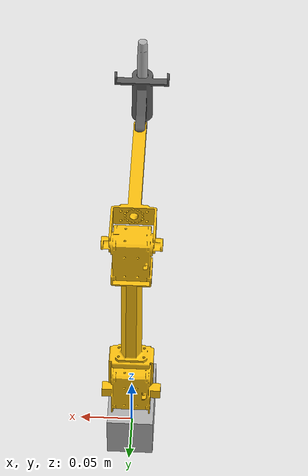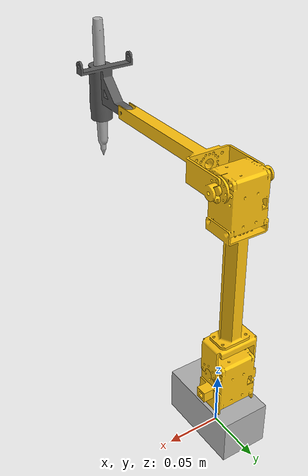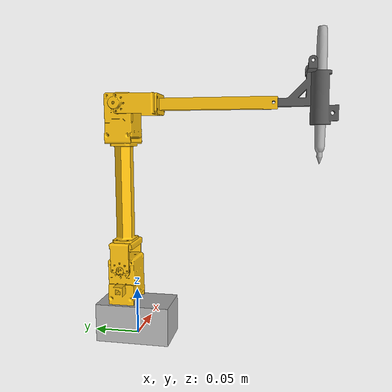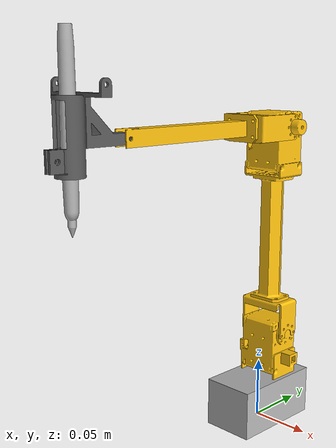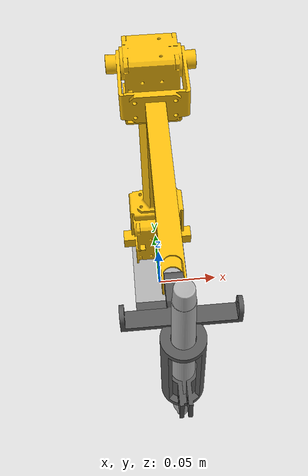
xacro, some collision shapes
<?xml version="1.0" ?>
<robot name="pr_robot" xmlns:xacro="http://www.ros.org/wiki/xacro">

<xacro:arg name="use_sim" default="true"/>

<xacro:include filename="$(find pr_description)/urdf/materials.xacro" />
<xacro:include filename="$(find pr_description)/urdf/pr_robot.gazebo" />

<link name="world"/>

<joint name="world_joint" type="fixed">
  <parent link="world"/>
  <child link="base_link"/>
</joint>

<link name="base_link">
  <inertial>
    <origin xyz="-4.853296224115538e-06 0.00024714628831860636 0.013633958120257385" rpy="0 0 0"/>
    <mass value="0.43776064834744016"/>
    <inertia ixx="0.000186" iyy="0.000102" izz="0.000172" ixy="0.0" iyz="-1e-06" ixz="0.0"/>
  </inertial>
  <visual>
    <origin xyz="0 0 0" rpy="0 0 0"/>
    <geometry>
      <mesh filename="package://pr_description/meshes/base_link.stl" scale="0.001 0.001 0.001"/>
    </geometry>
    <material name="pr_robot_silver"/>
  </visual>
  <collision>
    <origin xyz="0.0 0.0 0.0175" rpy="0 0 0"/>
    <geometry>
      <box size="0.044 0.080 0.041"/>
    </geometry>
  </collision>
</link>

<link name="yaw_link">
  <inertial>
    <origin xyz="-0.00047546439065966633 5.614646444242893e-06 0.02718028816828332" rpy="0 0 0"/>
    <mass value="0.05109923340267478"/>
    <inertia ixx="1.3e-05" iyy="1.6e-05" izz="9e-06" ixy="0.0" iyz="-0.0" ixz="0.0"/>
  </inertial>
  <visual>
    <origin xyz="0 0 0" rpy="0 0 0"/>
    <geometry>
      <mesh filename="package://pr_description/meshes/yaw_link.stl" scale="0.001 0.001 0.001"/>
    </geometry>
    <material name="pr_robot_color0"/>
  </visual>
  <collision>
    <origin xyz="0.0 0.0 0.026" rpy="0 0 0"/>
    <geometry>
      <box size="0.056 0.029 0.052"/>
    </geometry>
  </collision>
</link>

<link name="bicep_link">
  <inertial>
    <origin xyz="0.01863772819177127 0.012137367453564661 0.17072163533558457" rpy="0 0 0"/>
    <mass value="0.067065292842475"/>
    <inertia ixx="0.000166" iyy="0.000169" izz="1.1e-05" ixy="0.0" iyz="-0.0" ixz="1e-06"/>
  </inertial>
  <visual>
    <origin xyz="0 0 0" rpy="0 0 0"/>
    <geometry>
      <mesh filename="package://pr_description/meshes/bicep_link.stl" scale="0.001 0.001 0.001"/>
    </geometry>
    <material name="pr_robot_color0"/>
  </visual>
  <collision>
    <origin xyz="0.019 0.0 0.091" rpy="0 0 0"/>
    <geometry>
      <box size="0.042 0.029 0.188"/>
    </geometry>
  </collision>
</link>

<link name="forearm_link">
  <inertial>
    <origin xyz="2.4204837908080184e-06 0.06877599518766285 0.07648825562775802" rpy="0 0 0"/>
    <mass value="0.01211497734912192"/>
    <inertia ixx="2.3e-05" iyy="3e-06" izz="2.5e-05" ixy="0.0" iyz="0.0" ixz="-0.0"/>
  </inertial>
  <visual>
    <origin xyz="0 0 0" rpy="0 0 0"/>
    <geometry>
      <mesh filename="package://pr_description/meshes/forearm_link.stl" scale="0.001 0.001 0.001"/>
    </geometry>
    <material name="pr_robot_color0"/>
  </visual>
  <collision>
    <origin xyz="0.019 0.078 0.0" rpy="0 0 0"/>
    <geometry>
      <box size="0.056 0.167 0.021"/>
    </geometry>
  </collision>
</link>

<link name="pen_mount_link">
  <inertial>
    <origin xyz="-0.014299983102150067 0.047634046578663464 0.2556447914018716" rpy="0 0 0"/>
    <mass value="0.014680193276803751"/>
    <inertia ixx="6e-06" iyy="4e-06" izz="3e-06" ixy="-0.0" iyz="0.0" ixz="0.0"/>
  </inertial>
  <visual>
    <origin xyz="0 0 0" rpy="0 0 0"/>
    <geometry>
      <mesh filename="package://pr_description/meshes/pen_mount_link.stl" scale="0.001 0.001 0.001"/>
    </geometry>
    <material name="pr_robot_color1"/>
  </visual>
  <collision>
    <origin xyz="0.005 0.029 0.009" rpy="0 0 0"/>
    <geometry>
      <box size="0.052 0.066 0.061"/>
    </geometry>
  </collision>
</link>

<link name="pen_link">
  <inertial>
    <origin xyz="-0.0046999821998861034 0.16900084846893154 0.27836679392107744" rpy="0 0 0"/>
    <mass value="0.010548533572015115"/>
    <inertia ixx="1.2e-05" iyy="1.2e-05" izz="0.0" ixy="-0.0" iyz="0.0" ixz="0.0"/>
  </inertial>
  <visual>
    <origin xyz="0 0 0" rpy="0 0 0"/>
    <geometry>
      <mesh filename="package://pr_description/meshes/pen_link.stl" scale="0.001 0.001 0.001"/>
    </geometry>
    <material name="pr_robot_silver"/>
  </visual>
  <collision>
    <origin xyz="0.0 0.0 0.023" rpy="0 0 0"/>
    <geometry>
      <cylinder radius="0.006" length="0.132"/>
    </geometry>
  </collision>
</link>

<link name="pen_tip_link">
  <inertial>
    <origin xyz="1.7967033327071713e-08 0.0056325184082814065 0.05296188080541599" rpy="0 0 0"/>
    <mass value="5.550147021341971e-10"/>
    <inertia ixx="0.0" iyy="0.0" izz="0.0" ixy="0.0" iyz="0.0" ixz="0.0"/>
  </inertial>
  <visual>
    <origin xyz="0 0 0" rpy="0 0 0"/>
    <geometry>
      <mesh filename="package://pr_description/meshes/pen_tip_link.stl" scale="0.001 0.001 0.001"/>
    </geometry>
    <material name="pr_robot_color2"/>
  </visual>
  <collision>
    <origin xyz="0 0 0" rpy="0 0 0"/>
    <geometry>
      <sphere radius="0.001"/>
    </geometry>
  </collision>
</link>

<joint name="yaw_joint" type="revolute">
  <origin xyz="0.0 0.012 0.036" rpy="0.0 0.0 3.14159"/>
  <parent link="base_link"/>
  <child link="yaw_link"/>
  <axis xyz="0.0 0.0 1.0"/>
  <limit upper="1.570796" lower="-1.570796" effort="100" velocity="100"/>
</joint>

<joint name="bicep_joint" type="revolute">
  <origin xyz="-0.019 0.0 0.0405" rpy="0.0 0.0 0.0"/>
  <parent link="yaw_link"/>
  <child link="bicep_link"/>
  <axis xyz="1.0 0.0 0.0"/>
  <limit upper="1.570796" lower="-1.570796" effort="100" velocity="100"/>
</joint>

<joint name="forearm_joint" type="revolute">
  <origin xyz="0.0 0.000172 0.174" rpy="0.0 0.0 0.0"/>
  <parent link="bicep_link"/>
  <child link="forearm_link"/>
  <axis xyz="1.0 0.0 0.0"/>
  <limit upper="1.570796" lower="-1.570796" effort="100" velocity="100"/>
</joint>

<joint name="pen_mount_joint" type="revolute">
  <origin xyz="0.0143 0.157 -3.3e-05" rpy="0.0 0.0 0.0"/>
  <parent link="forearm_link"/>
  <child link="pen_mount_link"/>
  <axis xyz="-1.0 0.0 0.0"/>
  <limit upper="2.268928" lower="-1.832596" effort="100" velocity="100"/>
</joint>

<joint name="pen_joint" type="fixed">
  <origin xyz="0.0047 0.045368 -0.018223" rpy="0.0 0.0 0.0"/>
  <parent link="pen_mount_link"/>
  <child link="pen_link"/>
</joint>

<joint name="pen_tip_joint" type="fixed">
  <origin xyz="0.0 0.000261 -0.042585" rpy="0.0 0.0 0.0"/>
  <parent link="pen_link"/>
  <child link="pen_tip_link"/>
</joint>

<xacro:if value="$(arg use_sim)">
<ros2_control name="pr_robot" type="system">
  <hardware>
    <plugin>gz_ros2_control/GazeboSimSystem</plugin>
  </hardware>
  <joint name="yaw_joint">
    <command_interface name="position"/>
    <state_interface name="position"/>
    <state_interface name="velocity"/>
  </joint>
  <joint name="bicep_joint">
    <command_interface name="position"/>
    <state_interface name="position"/>
    <state_interface name="velocity"/>
  </joint>
  <joint name="forearm_joint">
    <command_interface name="position"/>
    <state_interface name="position"/>
    <state_interface name="velocity"/>
  </joint>
  <joint name="pen_mount_joint">
    <command_interface name="position"/>
    <state_interface name="position"/>
    <state_interface name="velocity"/>
  </joint>
</ros2_control>
</xacro:if>

<xacro:unless value="$(arg use_sim)">
<ros2_control name="DynamixelHardware" type="system">
  <hardware>
    <plugin>dynamixel_hardware/DynamixelHardware</plugin>
    <param name="usb_port">/dev/ttyUSB0</param>
    <param name="baud_rate">1000000</param>
  </hardware>
  <joint name="forearm_joint">
    <param name="id">11</param>
    <param name="profile_acceleration">50</param>
    <param name="profile_velocity">200</param>
    <command_interface name="position"/>
    <state_interface name="position"/>
    <state_interface name="velocity"/>
  </joint>
  <joint name="yaw_joint">
    <param name="id">12</param>
    <param name="profile_acceleration">50</param>
    <param name="profile_velocity">200</param>
    <command_interface name="position"/>
    <state_interface name="position"/>
    <state_interface name="velocity"/>
  </joint>
  <joint name="bicep_joint">
    <param name="id">13</param>
    <param name="profile_acceleration">50</param>
    <param name="profile_velocity">200</param>
    <command_interface name="position"/>
    <state_interface name="position"/>
    <state_interface name="velocity"/>
  </joint>
</ros2_control>
</xacro:unless>

</robot>

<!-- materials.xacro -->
<robot name="pr_robot" xmlns:xacro="http://www.ros.org/wiki/xacro" >

<material name="pr_robot_silver">
  <color rgba="0.700 0.700 0.700 1.000"/>
</material>

<material name="pr_robot_color0">
  <color rgba="1.0 0.761 0.055 1.0"/>
</material>

<material name="pr_robot_color1">
  <color rgba="0.357 0.357 0.357 1.0"/>
</material>

<material name="pr_robot_color2">
  <color rgba="0.965 0.965 0.953 1.0"/>
</material>

</robot>

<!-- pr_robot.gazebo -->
<robot name="pr_robot" xmlns:xacro="http://www.ros.org/wiki/xacro" >

<xacro:property name="body_color" value="Gazebo/Silver" />

<gazebo>
  <plugin filename="gz_ros2_control-system" name="gz_ros2_control::GazeboSimROS2ControlPlugin">
    <parameters>$(find pr_description)/config/controller.yaml</parameters>
  </plugin>
</gazebo>
<gazebo reference="base_link">
  <material>${body_color}</material>
  <mu1>0.2</mu1>
  <mu2>0.2</mu2>
  <self_collide>true</self_collide>
  <gravity>true</gravity>
</gazebo>

<gazebo reference="yaw_link">
  <material>${body_color}</material>
  <mu1>0.2</mu1>
  <mu2>0.2</mu2>
  <self_collide>true</self_collide>
</gazebo>

<gazebo reference="bicep_link">
  <material>${body_color}</material>
  <mu1>0.2</mu1>
  <mu2>0.2</mu2>
  <self_collide>true</self_collide>
</gazebo>

<gazebo reference="forearm_link">
  <material>${body_color}</material>
  <mu1>0.2</mu1>
  <mu2>0.2</mu2>
  <self_collide>true</self_collide>
</gazebo>

<gazebo reference="pen_mount_link">
  <material>${body_color}</material>
  <mu1>0.2</mu1>
  <mu2>0.2</mu2>
  <self_collide>true</self_collide>
</gazebo>

<gazebo reference="pen_link">
  <material>${body_color}</material>
  <mu1>0.2</mu1>
  <mu2>0.2</mu2>
  <self_collide>true</self_collide>
</gazebo>

<gazebo reference="pen_tip_link">
  <material>${body_color}</material>
  <mu1>0.2</mu1>
  <mu2>0.2</mu2>
  <self_collide>true</self_collide>
</gazebo>

</robot>
